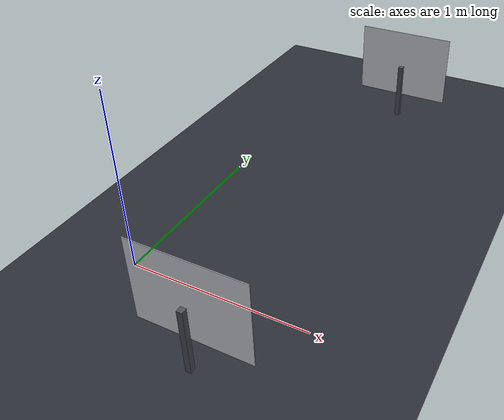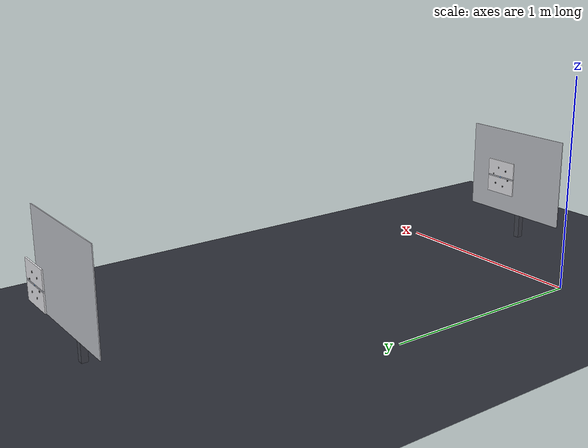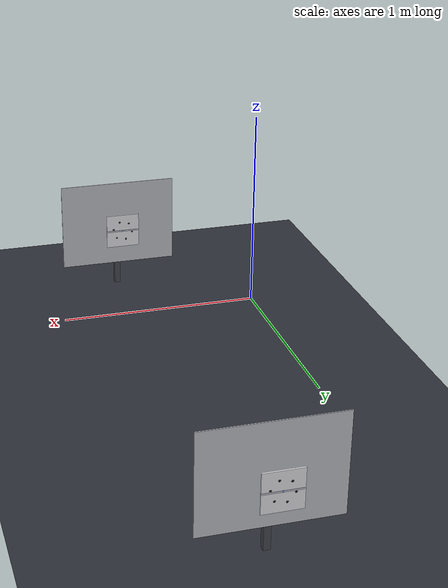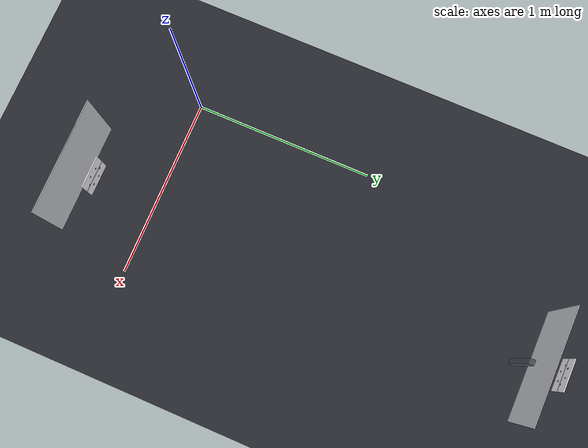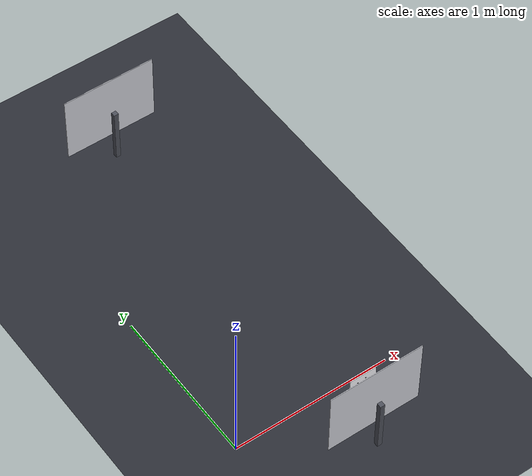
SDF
<?xml version="1.0"?>
<sdf version="1.10">
  <world name="blindspot">
    <physics name="fast" type="ignored">
      <max_step_size>0.002</max_step_size>
      <real_time_factor>1.0</real_time_factor>
    </physics>
    <plugin filename="gz-sim-physics-system" name="gz::sim::systems::Physics"/>
    <plugin filename="gz-sim-user-commands-system" name="gz::sim::systems::UserCommands"/>
    <plugin filename="gz-sim-scene-broadcaster-system" name="gz::sim::systems::SceneBroadcaster"/>
    <plugin filename="gz-sim-sensors-system" name="gz::sim::systems::Sensors">
      <render_engine>ogre2</render_engine>
    </plugin>

    <scene>
      <background>0.10 0.11 0.13 1</background>
      <ambient>0.45 0.45 0.48 1</ambient>
      <grid>false</grid>
    </scene>

    <light type="directional" name="sun">
      <cast_shadows>false</cast_shadows>
      <pose>0 0 10 0 0 0</pose>
      <diffuse>0.95 0.95 0.95 1</diffuse>
      <direction>-0.4 0.1 -0.9</direction>
    </light>
    <light type="point" name="fill">
      <pose>0.3 0 0.9 0 0 0</pose>
      <diffuse>0.7 0.7 0.7 1</diffuse>
      <attenuation><range>6</range><linear>0.25</linear></attenuation>
    </light>
    <!-- the same fill light for the right cell, 2.5 m over, so both cells are
         lit identically and the side-by-side shots match -->
    <light type="point" name="fill_right">
      <pose>0.3 2.5 0.9 0 0 0</pose>
      <diffuse>0.7 0.7 0.7 1</diffuse>
      <attenuation><range>6</range><linear>0.25</linear></attenuation>
    </light>

    <model name="ground_plane">
      <static>true</static>
      <link name="link">
        <collision name="c"><geometry><plane><normal>0 0 1</normal><size>20 20</size></plane></geometry></collision>
        <visual name="v">
          <geometry><plane><normal>0 0 1</normal><size>20 20</size></plane></geometry>
          <material><ambient>0.13 0.14 0.16 1</ambient><diffuse>0.17 0.18 0.21 1</diffuse></material>
        </visual>
      </link>
    </model>

    <model name="panel_left">
      <pose>0.636 -0.250 0.359 0 0 -1.5708</pose>
      <link name="post">
        <inertial><mass>50</mass><inertia><ixx>1</ixx><iyy>1</iyy><izz>1</izz></inertia></inertial>
        <visual name="v">
          <pose>0.16 0 -0.21 0 0 0</pose>
          <geometry><box><size>0.03 0.03 0.42</size></box></geometry>
          <material><ambient>0.25 0.26 0.3 1</ambient><diffuse>0.3 0.31 0.35 1</diffuse></material>
        </visual>
        <!-- light backdrop, far enough back (11 cm) to clear the folded flaps,
             so a dark marker never sits on a dark background -->
        <visual name="backdrop">
          <pose>0.11 0 0.0 0 0 0</pose>
          <geometry><box><size>0.004 0.60 0.45</size></box></geometry>
          <material><ambient>0.78 0.79 0.82 1</ambient><diffuse>0.82 0.83 0.86 1</diffuse></material>
        </visual>
        <visual name="hinge">
          <geometry><box><size>0.006 0.17 0.006</size></box></geometry>
          <material><ambient>0.75 0.76 0.8 1</ambient><diffuse>0.8 0.81 0.85 1</diffuse></material>
        </visual>
        <visual name="socket">
          <pose>-0.0035 0 0 0 1.5708 0</pose>
          <geometry><cylinder><radius>0.0045</radius><length>0.001</length></cylinder></geometry>
          <material><ambient>0.45 0.65 0.9 1</ambient><diffuse>0.5 0.7 0.95 1</diffuse></material>
        </visual>
      </link>
      <link name="flap_up">
        <gravity>false</gravity>
        <inertial><mass>0.2</mass><inertia><ixx>5e-4</ixx><iyy>5e-4</iyy><izz>5e-4</izz></inertia></inertial>
        <visual name="face">
          <pose>0 0 0.0455 0 0 0</pose>
          <geometry><box><size>0.006 0.17 0.083</size></box></geometry>
          <material><ambient>0.93 0.93 0.95 1</ambient><diffuse>0.98 0.98 1 1</diffuse></material>
        </visual>
        <visual name="dot0">
          <pose>0 0.04908 0.00954 0 0 0</pose>
          <geometry><sphere><radius>0.006</radius></sphere></geometry>
          <material><ambient>0.02 0.02 0.02 1</ambient><diffuse>0.04 0.04 0.04 1</diffuse><specular>0.05 0.05 0.05 1</specular></material>
        </visual>
        <visual name="dot1">
          <pose>0 0.01628 0.04728 0 0 0</pose>
          <geometry><sphere><radius>0.006</radius></sphere></geometry>
          <material><ambient>0.02 0.02 0.02 1</ambient><diffuse>0.04 0.04 0.04 1</diffuse><specular>0.05 0.05 0.05 1</specular></material>
        </visual>
        <visual name="dot2">
          <pose>0 -0.03280 0.03774 0 0 0</pose>
          <geometry><sphere><radius>0.006</radius></sphere></geometry>
          <material><ambient>0.02 0.02 0.02 1</ambient><diffuse>0.04 0.04 0.04 1</diffuse><specular>0.05 0.05 0.05 1</specular></material>
        </visual>
      </link>
      <link name="flap_dn">
        <gravity>false</gravity>
        <inertial><mass>0.2</mass><inertia><ixx>5e-4</ixx><iyy>5e-4</iyy><izz>5e-4</izz></inertia></inertial>
        <visual name="face">
          <pose>0 0 -0.0455 0 0 0</pose>
          <geometry><box><size>0.006 0.17 0.083</size></box></geometry>
          <material><ambient>0.93 0.93 0.95 1</ambient><diffuse>0.98 0.98 1 1</diffuse></material>
        </visual>
        <visual name="dot3">
          <pose>0 -0.04908 -0.00954 0 0 0</pose>
          <geometry><sphere><radius>0.006</radius></sphere></geometry>
          <material><ambient>0.02 0.02 0.02 1</ambient><diffuse>0.04 0.04 0.04 1</diffuse><specular>0.05 0.05 0.05 1</specular></material>
        </visual>
        <visual name="dot4">
          <pose>0 -0.01628 -0.04728 0 0 0</pose>
          <geometry><sphere><radius>0.006</radius></sphere></geometry>
          <material><ambient>0.02 0.02 0.02 1</ambient><diffuse>0.04 0.04 0.04 1</diffuse><specular>0.05 0.05 0.05 1</specular></material>
        </visual>
        <visual name="dot5">
          <pose>0 0.03280 -0.03774 0 0 0</pose>
          <geometry><sphere><radius>0.006</radius></sphere></geometry>
          <material><ambient>0.02 0.02 0.02 1</ambient><diffuse>0.04 0.04 0.04 1</diffuse><specular>0.05 0.05 0.05 1</specular></material>
        </visual>
      </link>
      <joint name="anchor" type="fixed"><parent>world</parent><child>post</child></joint>
      <!-- positive command folds both flaps away from the arm -->
      <joint name="fold_up" type="revolute">
        <parent>post</parent><child>flap_up</child>
        <axis><xyz>0 1 0</xyz><limit><lower>-0.1</lower><upper>1.6</upper><effort>50</effort><velocity>6</velocity></limit></axis>
      </joint>
      <joint name="fold_dn" type="revolute">
        <parent>post</parent><child>flap_dn</child>
        <axis><xyz>0 -1 0</xyz><limit><lower>-0.1</lower><upper>1.6</upper><effort>50</effort><velocity>6</velocity></limit></axis>
      </joint>
      <plugin filename="gz-sim-joint-position-controller-system" name="gz::sim::systems::JointPositionController">
        <joint_name>fold_up</joint_name><topic>/fold_left</topic>
        <use_velocity_commands>true</use_velocity_commands><p_gain>12</p_gain><i_gain>0</i_gain><d_gain>0</d_gain>
      </plugin>
      <plugin filename="gz-sim-joint-position-controller-system" name="gz::sim::systems::JointPositionController">
        <joint_name>fold_dn</joint_name><topic>/fold_left</topic>
        <use_velocity_commands>true</use_velocity_commands><p_gain>12</p_gain><i_gain>0</i_gain><d_gain>0</d_gain>
      </plugin>
    </model>
    <model name="panel_right">
      <pose>0.636 2.250 0.359 0 0 -1.5708</pose>
      <link name="post">
        <inertial><mass>50</mass><inertia><ixx>1</ixx><iyy>1</iyy><izz>1</izz></inertia></inertial>
        <visual name="v">
          <pose>0.16 0 -0.21 0 0 0</pose>
          <geometry><box><size>0.03 0.03 0.42</size></box></geometry>
          <material><ambient>0.25 0.26 0.3 1</ambient><diffuse>0.3 0.31 0.35 1</diffuse></material>
        </visual>
        <!-- light backdrop, far enough back (11 cm) to clear the folded flaps,
             so a dark marker never sits on a dark background -->
        <visual name="backdrop">
          <pose>0.11 0 0.0 0 0 0</pose>
          <geometry><box><size>0.004 0.60 0.45</size></box></geometry>
          <material><ambient>0.78 0.79 0.82 1</ambient><diffuse>0.82 0.83 0.86 1</diffuse></material>
        </visual>
        <visual name="hinge">
          <geometry><box><size>0.006 0.17 0.006</size></box></geometry>
          <material><ambient>0.75 0.76 0.8 1</ambient><diffuse>0.8 0.81 0.85 1</diffuse></material>
        </visual>
        <visual name="socket">
          <pose>-0.0035 0 0 0 1.5708 0</pose>
          <geometry><cylinder><radius>0.0045</radius><length>0.001</length></cylinder></geometry>
          <material><ambient>0.45 0.65 0.9 1</ambient><diffuse>0.5 0.7 0.95 1</diffuse></material>
        </visual>
      </link>
      <link name="flap_up">
        <gravity>false</gravity>
        <inertial><mass>0.2</mass><inertia><ixx>5e-4</ixx><iyy>5e-4</iyy><izz>5e-4</izz></inertia></inertial>
        <visual name="face">
          <pose>0 0 0.0455 0 0 0</pose>
          <geometry><box><size>0.006 0.17 0.083</size></box></geometry>
          <material><ambient>0.93 0.93 0.95 1</ambient><diffuse>0.98 0.98 1 1</diffuse></material>
        </visual>
        <visual name="dot0">
          <pose>0 0.04908 0.00954 0 0 0</pose>
          <geometry><sphere><radius>0.006</radius></sphere></geometry>
          <material><ambient>0.02 0.02 0.02 1</ambient><diffuse>0.04 0.04 0.04 1</diffuse><specular>0.05 0.05 0.05 1</specular></material>
        </visual>
        <visual name="dot1">
          <pose>0 0.01628 0.04728 0 0 0</pose>
          <geometry><sphere><radius>0.006</radius></sphere></geometry>
          <material><ambient>0.02 0.02 0.02 1</ambient><diffuse>0.04 0.04 0.04 1</diffuse><specular>0.05 0.05 0.05 1</specular></material>
        </visual>
        <visual name="dot2">
          <pose>0 -0.03280 0.03774 0 0 0</pose>
          <geometry><sphere><radius>0.006</radius></sphere></geometry>
          <material><ambient>0.02 0.02 0.02 1</ambient><diffuse>0.04 0.04 0.04 1</diffuse><specular>0.05 0.05 0.05 1</specular></material>
        </visual>
      </link>
      <link name="flap_dn">
        <gravity>false</gravity>
        <inertial><mass>0.2</mass><inertia><ixx>5e-4</ixx><iyy>5e-4</iyy><izz>5e-4</izz></inertia></inertial>
        <visual name="face">
          <pose>0 0 -0.0455 0 0 0</pose>
          <geometry><box><size>0.006 0.17 0.083</size></box></geometry>
          <material><ambient>0.93 0.93 0.95 1</ambient><diffuse>0.98 0.98 1 1</diffuse></material>
        </visual>
        <visual name="dot3">
          <pose>0 -0.04908 -0.00954 0 0 0</pose>
          <geometry><sphere><radius>0.006</radius></sphere></geometry>
          <material><ambient>0.02 0.02 0.02 1</ambient><diffuse>0.04 0.04 0.04 1</diffuse><specular>0.05 0.05 0.05 1</specular></material>
        </visual>
        <visual name="dot4">
          <pose>0 -0.01628 -0.04728 0 0 0</pose>
          <geometry><sphere><radius>0.006</radius></sphere></geometry>
          <material><ambient>0.02 0.02 0.02 1</ambient><diffuse>0.04 0.04 0.04 1</diffuse><specular>0.05 0.05 0.05 1</specular></material>
        </visual>
        <visual name="dot5">
          <pose>0 0.03280 -0.03774 0 0 0</pose>
          <geometry><sphere><radius>0.006</radius></sphere></geometry>
          <material><ambient>0.02 0.02 0.02 1</ambient><diffuse>0.04 0.04 0.04 1</diffuse><specular>0.05 0.05 0.05 1</specular></material>
        </visual>
      </link>
      <joint name="anchor" type="fixed"><parent>world</parent><child>post</child></joint>
      <!-- positive command folds both flaps away from the arm -->
      <joint name="fold_up" type="revolute">
        <parent>post</parent><child>flap_up</child>
        <axis><xyz>0 1 0</xyz><limit><lower>-0.1</lower><upper>1.6</upper><effort>50</effort><velocity>6</velocity></limit></axis>
      </joint>
      <joint name="fold_dn" type="revolute">
        <parent>post</parent><child>flap_dn</child>
        <axis><xyz>0 -1 0</xyz><limit><lower>-0.1</lower><upper>1.6</upper><effort>50</effort><velocity>6</velocity></limit></axis>
      </joint>
      <plugin filename="gz-sim-joint-position-controller-system" name="gz::sim::systems::JointPositionController">
        <joint_name>fold_up</joint_name><topic>/fold_right</topic>
        <use_velocity_commands>true</use_velocity_commands><p_gain>12</p_gain><i_gain>0</i_gain><d_gain>0</d_gain>
      </plugin>
      <plugin filename="gz-sim-joint-position-controller-system" name="gz::sim::systems::JointPositionController">
        <joint_name>fold_dn</joint_name><topic>/fold_right</topic>
        <use_velocity_commands>true</use_velocity_commands><p_gain>12</p_gain><i_gain>0</i_gain><d_gain>0</d_gain>
      </plugin>
    </model>
    <model name="cine_left">
      <static>true</static>
      <pose>1.5127 0.1548 0.5998 0 0.2443 -2.8274</pose>
      <link name="link">
        <sensor name="cine_left" type="camera">
          <camera>
            <horizontal_fov>0.6200</horizontal_fov>
            <image><width>1280</width><height>720</height><format>R8G8B8</format></image>
            <clip><near>0.02</near><far>30</far></clip>
          </camera>
          <always_on>1</always_on>
          <update_rate>60</update_rate>
          <topic>cine_left</topic>
        </sensor>
      </link>
    </model>
    <model name="cine_right">
      <static>true</static>
      <pose>1.5127 2.6548 0.5998 0 0.2443 -2.8274</pose>
      <link name="link">
        <sensor name="cine_right" type="camera">
          <camera>
            <horizontal_fov>0.6200</horizontal_fov>
            <image><width>1280</width><height>720</height><format>R8G8B8</format></image>
            <clip><near>0.02</near><far>30</far></clip>
          </camera>
          <always_on>1</always_on>
          <update_rate>60</update_rate>
          <topic>cine_right</topic>
        </sensor>
      </link>
    </model>
  </world>
</sdf>
